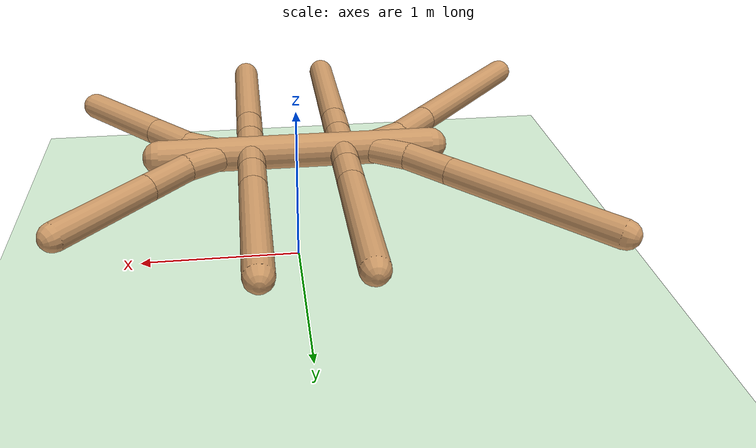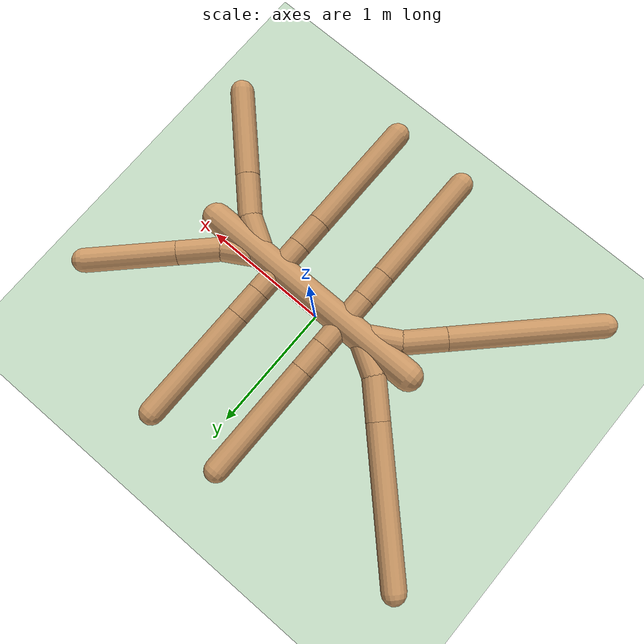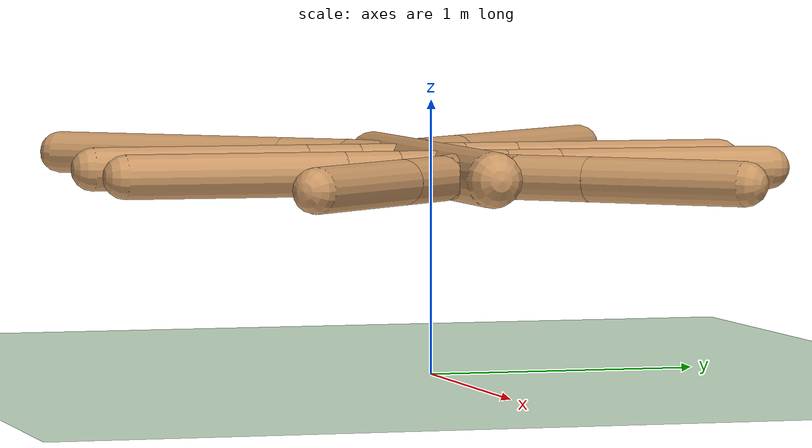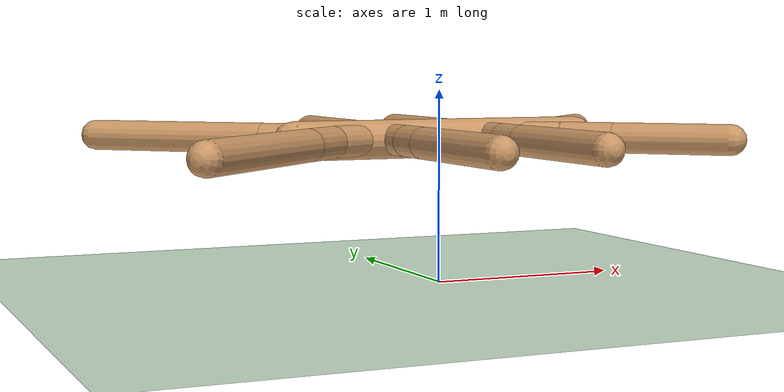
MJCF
<mujoco model="ant">
  <compiler angle="degree" coordinate="local" inertiafromgeom="true"/>
  <option integrator="RK4" timestep="0.002"/>
  <custom>
    <numeric data="0.0 0.0 0.55 1.0 0.0 0.0 0.0 0.0 1.0 0.0 -1.0 0.0 -1.0 0.0 1.0" name="init_qpos"/>
  </custom>
  <default>
    <joint armature="1" damping="1" limited="true"/>
    <geom conaffinity="0" condim="3" density="5.0" friction="1 0.5 0.5" margin="0.01" rgba="0.8 0.6 0.4 1"/>
  </default>
  <asset>
    <texture builtin="gradient" height="100" rgb1="1 1 1" rgb2="0 0 0" type="skybox" width="100"/>
    <texture builtin="flat" height="1278" mark="cross" markrgb="1 1 1" name="texgeom" random="0.01" rgb1="0.8 0.6 0.4" rgb2="0.8 0.6 0.4" type="cube" width="127"/>
    <texture builtin="checker" height="100" name="texplane" rgb1="0 0 0" rgb2="0.8 0.8 0.8" type="2d" width="100"/>
    <material name="MatPlane" reflectance="0.5" shininess="1" specular="1" texrepeat="60 60" texture="texplane"/>
    <material name="geom" texture="texgeom" texuniform="true"/>
  </asset>
  <worldbody>
    <light cutoff="100" diffuse="1 1 1" dir="-0 0 -1.3" directional="true" exponent="1" pos="0 0 1.3" specular=".1 .1 .1"/>
    <geom conaffinity="1" condim="3" material="MatPlane" name="floor" pos="0 0 0" rgba="0.8 0.9 0.8 1" size="40 40 40" type="plane"/>
    <body name="torso" pos="0 0 0.75">
      <geom fromto="-0.8 0.0 0.0 0.8 0.0 0.0" name="torso_geom" size="0.1" type="capsule"/>

      <joint armature="0" damping="0" limited="false" margin="0.01" name="root" pos="0 0 0" type="free"/>

      <body name="left_1_leg" pos="0.4 0 0">
        <geom fromto="0.0 0.0 0.0 0.24 0.14 0.0" name="left_1_aux_geom" size="0.08" type="capsule"/>
        <body name="left_1_aux" pos="0.24 0.14 0">
          <joint axis="0 0 1" name="left_1_hip" pos="0.0 0.0 0.0" range="-30 30" type="hinge"/>
          <geom fromto="0.0 0.0 0.0 0.2 0.2 0.0" name="left_1_leg_geom" size="0.08" type="capsule"/>
          <body pos="0.2 0.2 0">
            <joint axis="-1 1 0" name="left_1_ankle" pos="0.0 0.0 0.0" range="30 70" type="hinge"/>
            <geom fromto="0.0 0.0 0.0 0.425 0.425 0.0" name="left_1_ankle_geom" size="0.08" type="capsule"/> <!--length = 0.6 = sqrt(0.36) -->
          </body>
        </body>
      </body>

      <body name="left_2_leg" pos="0.27 0 0">
        <geom fromto="0.0 0.0 0.0 0.0 0.2 0.0" name="left_2_aux_geom" size="0.08" type="capsule"/>
        <body name="left_2_aux" pos="0.0 0.2 0">
          <joint axis="0 0 1" name="left_2_hip" pos="0.0 0.0 0.0" range="-30 30" type="hinge"/>
          <geom fromto="0.0 0.0 0.0 0.0 0.2 0.0" name="left_2_leg_geom" size="0.08" type="capsule"/>
          <body pos="0.0 0.2 0.0">
            <joint axis="-1 0 0" name="left_2_ankle" pos="0.0 0.0 0.0" range="30 63" type="hinge"/>
            <geom fromto="0.0 0.0 0.0 0.0 0.8 0.0" name="left_2_ankle_geom" size="0.08" type="capsule"/> <!--length = 0.8 = sqrt(0.64) -->
          </body>
        </body>
      </body>

      <body name="left_3_leg" pos="-0.27 0 0">
        <geom fromto="0.0 0.0 0.0 0.0 0.2 0.0" name="left_3_aux_geom" size="0.08" type="capsule"/>
        <body name="left_3_aux" pos="0.0 0.2 0">
          <joint axis="0 0 1" name="left_3_hip" pos="0.0 0.0 0.0" range="-30 30" type="hinge"/>
          <geom fromto="0.0 0.0 0.0 0.0 0.2 0.0" name="left_3_leg_geom" size="0.08" type="capsule"/>
          <body pos="0.0 0.2 0.0">
            <joint axis="-1 0 0" name="left_3_ankle" pos="0.0 0.0 0.0" range="30 63" type="hinge"/>
            <geom fromto="0.0 0.0 0.0 0.0 0.8 0.0" name="left_3_ankle_geom" size="0.08" type="capsule"/> <!--length = 0.8 = sqrt(0.64) -->
          </body>
        </body>
      </body>

      <body name="left_4_leg" pos="-0.4 0 0">
        <geom fromto="0.0 0.0 0.0 -0.24 0.14 0.0" name="left_4_aux_geom" size="0.08" type="capsule"/>
        <body name="left_4_aux" pos="-0.24 0.14 0">
          <joint axis="0 0 1" name="left_4_hip" pos="0.0 0.0 0.0" range="-30 30" type="hinge"/>
          <geom fromto="0.0 0.0 0.0 -0.2 0.2 0.0" name="left_4_leg_geom" size="0.08" type="capsule"/>
          <body pos="-0.2 0.2 0">
            <joint axis="-1 -1 0" name="left_4_ankle" pos="0.0 0.0 0.0" range="30 56" type="hinge"/>
            <geom fromto="0.0 0.0 0.0 -0.71 0.71 0.0" name="left_4_ankle_geom" size="0.08" type="capsule"/> <!--length = 1.0 = sqrt(1.0) -->
          </body>
        </body>
      </body>

      <body name="right_1_leg" pos="0.4 0 0">
        <geom fromto="0.0 0.0 0.0 0.24 -0.14 0.0" name="right_1_aux_geom" size="0.08" type="capsule"/>
        <body name="right_1_aux" pos="0.24 -0.14 0">
          <joint axis="0 0 1" name="right_1_hip" pos="0.0 0.0 0.0" range="-30 30" type="hinge"/>
          <geom fromto="0.0 0.0 0.0 0.2 -0.2 0.0" name="right_1_leg_geom" size="0.08" type="capsule"/>
          <body pos="0.2 -0.2 0">
            <joint axis="1 1 0" name="right_1_ankle" pos="0.0 0.0 0.0" range="30 70" type="hinge"/>
            <geom fromto="0.0 0.0 0.0 0.425 -0.425 0.0" name="right_1_ankle_geom" size="0.08" type="capsule"/>
          </body>
        </body>
      </body>

      <body name="right_2_leg" pos="0.27 0 0">
        <geom fromto="0.0 0.0 0.0 0.0 -0.2 0.0" name="right_2_aux_geom" size="0.08" type="capsule"/>
        <body name="right_2_aux" pos="0.0 -0.2 0">
          <joint axis="0 0 1" name="right_2_hip" pos="0.0 0.0 0.0" range="-30 30" type="hinge"/>
          <geom fromto="0.0 0.0 0.0 0.0 -0.2 0.0" name="right_2_leg_geom" size="0.08" type="capsule"/>
          <body pos="0.0 -0.2 0">
            <joint axis="1 0 0" name="right_2_ankle" pos="0.0 0.0 0.0" range="30 63" type="hinge"/>
            <geom fromto="0.0 0.0 0.0 0.0 -0.8 0.0" name="right_2_ankle_geom" size="0.08" type="capsule"/>
          </body>
        </body>
      </body>

      <body name="right_3_leg" pos="-0.27 0 0">
        <geom fromto="0.0 0.0 0.0 0.0 -0.2 0.0" name="right_3_aux_geom" size="0.08" type="capsule"/>
        <body name="right_3_aux" pos="0.0 -0.2 0">
          <joint axis="0 0 1" name="right_3_hip" pos="0.0 0.0 0.0" range="-30 30" type="hinge"/>
          <geom fromto="0.0 0.0 0.0 0.0 -0.2 0.0" name="right_3_leg_geom" size="0.08" type="capsule"/>
          <body pos="0.0 -0.2 0">
            <joint axis="1 0 0" name="right_3_ankle" pos="0.0 0.0 0.0" range="30 63" type="hinge"/>
            <geom fromto="0.0 0.0 0.0 0.0 -0.8 0.0" name="right_3_ankle_geom" size="0.08" type="capsule"/>
          </body>
        </body>
      </body>

      <body name="right_4_leg" pos="-0.4 0 0">
        <geom fromto="0.0 0.0 0.0 -0.24 -0.14 0.0" name="right_4_aux_geom" size="0.08" type="capsule"/>
        <body name="right_4_aux" pos="-0.24 -0.14 0">
          <joint axis="0 0 1" name="right_4_hip" pos="0.0 0.0 0.0" range="-30 30" type="hinge"/>
          <geom fromto="0.0 0.0 0.0 -0.2 -0.2 0.0" name="right_4_leg_geom" size="0.08" type="capsule"/>
          <body pos="-0.2 -0.2 0">
            <joint axis="1 -1 0" name="right_4_ankle" pos="0.0 0.0 0.0" range="30 56" type="hinge"/>
            <geom fromto="0.0 0.0 0.0 -0.71 -0.71 0.0" name="right_4_ankle_geom" size="0.08" type="capsule"/>
          </body>
        </body>
      </body>

    </body>
  </worldbody>

  <actuator>
    <motor ctrllimited="true" ctrlrange="-1.0 1.0" joint="left_1_hip" gear="150"/>
    <motor ctrllimited="true" ctrlrange="-1.0 1.0" joint="left_1_ankle" gear="150"/>
    <motor ctrllimited="true" ctrlrange="-1.0 1.0" joint="left_2_hip" gear="150"/>
    <motor ctrllimited="true" ctrlrange="-1.0 1.0" joint="left_2_ankle" gear="150"/>
    <motor ctrllimited="true" ctrlrange="-1.0 1.0" joint="left_3_hip" gear="150"/>
    <motor ctrllimited="true" ctrlrange="-1.0 1.0" joint="left_3_ankle" gear="150"/>
    <motor ctrllimited="true" ctrlrange="-1.0 1.0" joint="left_4_hip" gear="150"/>
    <motor ctrllimited="true" ctrlrange="-1.0 1.0" joint="left_4_ankle" gear="150"/>

    <motor ctrllimited="true" ctrlrange="-1.0 1.0" joint="right_1_hip" gear="150"/>
    <motor ctrllimited="true" ctrlrange="-1.0 1.0" joint="right_1_ankle" gear="150"/>
    <motor ctrllimited="true" ctrlrange="-1.0 1.0" joint="right_2_hip" gear="150"/>
    <motor ctrllimited="true" ctrlrange="-1.0 1.0" joint="right_2_ankle" gear="150"/>
    <motor ctrllimited="true" ctrlrange="-1.0 1.0" joint="right_3_hip" gear="150"/>
    <motor ctrllimited="true" ctrlrange="-1.0 1.0" joint="right_3_ankle" gear="150"/>
    <motor ctrllimited="true" ctrlrange="-1.0 1.0" joint="right_4_hip" gear="150"/>
    <motor ctrllimited="true" ctrlrange="-1.0 1.0" joint="right_4_ankle" gear="150"/>
  </actuator>

</mujoco>
